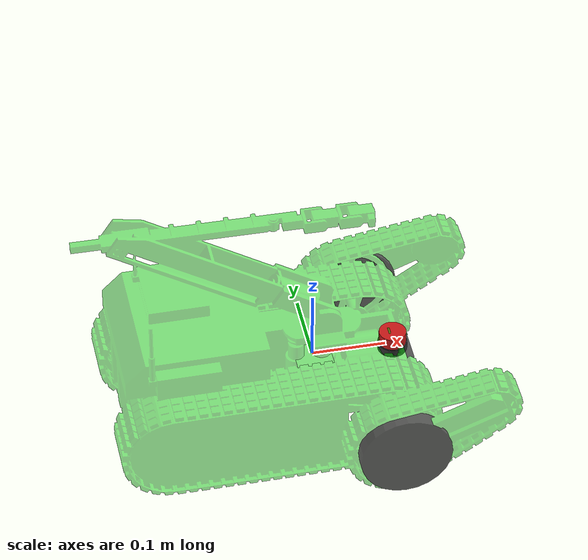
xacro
<?xml version="1.0"?>
<robot name="ATPBot" xmlns:xacro="http://ros.ogr/wiki/xacro">

  <property name="laser_offset_x" value="0.110" />
  <property name="laser_offset_y" value="0.0" />
  <property name="laser_offset_z" value="-0.03" />

  <xacro:include filename="$(find atp_description)/urdf/materials.urdf.xacro" />
  <xacro:include filename="$(find atp_description)/urdf/base.urdf.xacro" />
   <xacro:include filename="$(find atp_description)/urdf/laser.urdf.xacro" />

  <base name="base" color = "TransparentGreen"/>

  <laser parent="base" color = "TransparentBlack">
  	<origin xyz="${laser_offset_x} ${laser_offset_y} ${laser_offset_z}" rpy="0 0 0" />
  </laser>

</robot>

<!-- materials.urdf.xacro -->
<robot>

  <material name="Black">
    <color rgba="0.2 0.2 0.2 1.0"/>
  </material>

   <material name="TransparentBlack">
    <color rgba="0.2 0.2 0.2 0.8"/>
  </material>

  <material name="Orange">
    <color rgba="1.0  0.55 0.0 1.0"/>
  </material>

  <material name="Grey">
    <color rgba="0.7 0.7 0.7 1.0"/>
  </material>

  <material name="DarkGrey">
    <color rgba="0.3 0.3 0.3 1.0"/>
  </material>

  <material name="Red">
    <color rgba="0.8 0.0 0.0 1.0"/>
  </material>

  <material name="White">
    <color rgba="1.0 1.0 1.0 1.0"/>
  </material>

  <material name="OffWhite">
    <color rgba="0.8 0.8 0.8 1.0"/>
  </material>

  <material name="Blue">
    <color rgba="0.0 0.0 0.8 1.0"/>
  </material>

  <material name="Green">
    <color rgba="0.0 0.8 0.0 1.0"/>
  </material>

  <material name="TransparentGreen">
    <color rgba="0.0 0.8 0.0 0.5"/>
  </material>

</robot>

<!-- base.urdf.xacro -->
<robot name="base" xmlns:xacro="http://ros.org/wiki/xacro">

  <!-- Define a number of dimensions using properties -->
  <property name="base_size_x" value="0.57" />
  <property name="base_size_y" value="0.30" />
  <property name="base_size_z" value="0.35" />

  <property name="wheel_length" value="0.02032" />
  <property name="wheel_radius" value="0.06191" />

  <property name="wheel_offset_x" value="0.09" />
  <property name="wheel_offset_y" value="0.17" />
  <property name="wheel_offset_z" value="-0.038" />

  <property name="ground_clearance" value="0.065" />

  <property name="base_mesh_scale" value="0.013" />

  <property name="PI" value="3.1415" />

  <!-- define a wheel -->
  <macro name="wheel" params="suffix parent reflect color">
    <joint name="${parent}_${suffix}_wheel_joint" type="continuous">
      <axis xyz="0 0 1" />
      <limit effort="100" velocity="100"/>
      <safety_controller k_velocity="10" />
      <origin xyz="${wheel_offset_x} ${reflect*wheel_offset_y} ${wheel_offset_z}" rpy="${reflect*PI/2} 0 0" />
      <parent link="${parent}_link"/>
      <child link="${parent}_${suffix}_wheel_link"/>
    </joint>
    <link name="${parent}_${suffix}_wheel_link">
      <visual>
        <origin xyz="0 0 0" rpy="0 0 0" />
        <geometry>
          <cylinder radius="${wheel_radius}" length="${wheel_length}"/>
        </geometry>
        <material name="${color}" />
      </visual>
    </link>
  </macro>

  <!-- The base xacro macro -->
  <macro name="base" params="name color">
    <link name="${name}_link">
      <visual>
        <origin xyz="2.07 -1.618 -0.1" rpy="0 0 1.575" />
        <geometry>
          <mesh filename="package://atp_description/meshes/robot_arm.stl" scale="${base_mesh_scale} ${base_mesh_scale} ${base_mesh_scale}" />
        </geometry>
        <material name="${color}" />
      </visual>
      <collision>
        <origin xyz="-0.03 0 0.085" rpy="0 0 0" />
        <geometry>
          <box size="${base_size_x} ${wheel_offset_y*2 + wheel_length} ${base_size_z}" />
        </geometry>
      </collision>
    </link>
  </macro>

  <link name="base_footprint">
      <visual>
        <origin xyz="0 0 0" rpy="0 0 0" />
        <geometry>
          <box size="0.05 0.05 0.001" />
        </geometry>
        <material name="TransparentGreen" />
      </visual>
  </link>

  <joint name="base_joint" type="fixed">
    <origin xyz="0 0 0" rpy="0 0 0" />
    <parent link="base_footprint"/>
    <child link="base_link" />
  </joint>

   <!-- Add the drive wheels -->
   <wheel parent="base" suffix="l" reflect="1" color="TransparentBlack"/>
   <wheel parent="base" suffix="r" reflect="-1" color="TransparentBlack"/>

</robot>

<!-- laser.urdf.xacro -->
<robot name="laser" xmlns:xacro="http://ros.org/wiki/xacro">

  <!-- Define the laser macro -->
  <macro name="laser" params="parent color *origin">
    <joint name="${parent}_laser_bottom_joint" type="fixed">
      <xacro:insert_block name="origin" />
      <parent link="${parent}_link"/>
      <child link="base_laser_bottom"/>
    </joint>

   <link name="base_laser_bottom">
	 <visual>
        <origin xyz="0 0 0" rpy="0 0 0" />
        <geometry>
          <box size="0.05 0.05 0.041" />
        </geometry>
       <material name="${color}" />
     </visual>
     <collision>
        <origin xyz="0 0 0" rpy="0 0 0" />
      <geometry>
        <box size="0.05 0.05 0.041" />
      </geometry>
       </collision>
	 <inertial>
       <mass value="0.1" />
         <inertia ixx="0.001" ixy="0.0" ixz="0.0"
                   iyy="0.001" iyz="0.0"
                   izz="0.001" />
      </inertial>
   </link>

   <link name="base_laser_middle">
	 <visual>
        <origin xyz="0 0 0" rpy="0 0 0" />
		<geometry>
          <cylinder length="0.0115" radius=".02"/>
        </geometry>
        <material name="dark_grey">
           <color rgba="0.2 0.2 0.2 1.0"/>
        </material>
     </visual>
     <collision>
        <origin xyz="0 0 0" rpy="0 0 0" />
		 <geometry>
          <cylinder length="0.0115" radius=".02"/>
         </geometry>
       </collision>
	 <inertial>
       <mass value="0.1" />
         <inertia ixx="0.001" ixy="0.0" ixz="0.0"
                   iyy="0.001" iyz="0.0"
                   izz="0.001" />
      </inertial>
   </link>

   <joint name="base_laser_middle_joint" type="fixed">
     <parent link="base_laser_bottom"/>
     <child link="base_laser_middle" />
     <origin xyz="0 0 0.02625" rpy="0 0 0" />
   </joint>

   <link name="base_laser">
	 <visual>
        <origin xyz="0 0 0" rpy="0 0 0" />
		<geometry>
          <cylinder length="0.0175" radius=".0185"/>
        </geometry>
        <material name="red">
           <color rgba="0.8 0.1 0.1 1.0"/>
        </material>
     </visual>
     <collision>
        <origin xyz="0 0 0" rpy="0 0 0" />
		 <geometry>
          <cylinder length="0.0175" radius=".0185"/>
         </geometry>
       </collision>
	 <inertial>
       <mass value="0.1" />
         <inertia ixx="0.001" ixy="0.0" ixz="0.0"
                   iyy="0.001" iyz="0.0"
                   izz="0.001" />
      </inertial>
   </link>

   <joint name="base_laser_joint" type="fixed">
     <parent link="base_laser_middle"/>
     <child link="base_laser" />
     <origin xyz="0 0 0.0145" rpy="0 0 0" />
   </joint>

  </macro>

 </robot>
